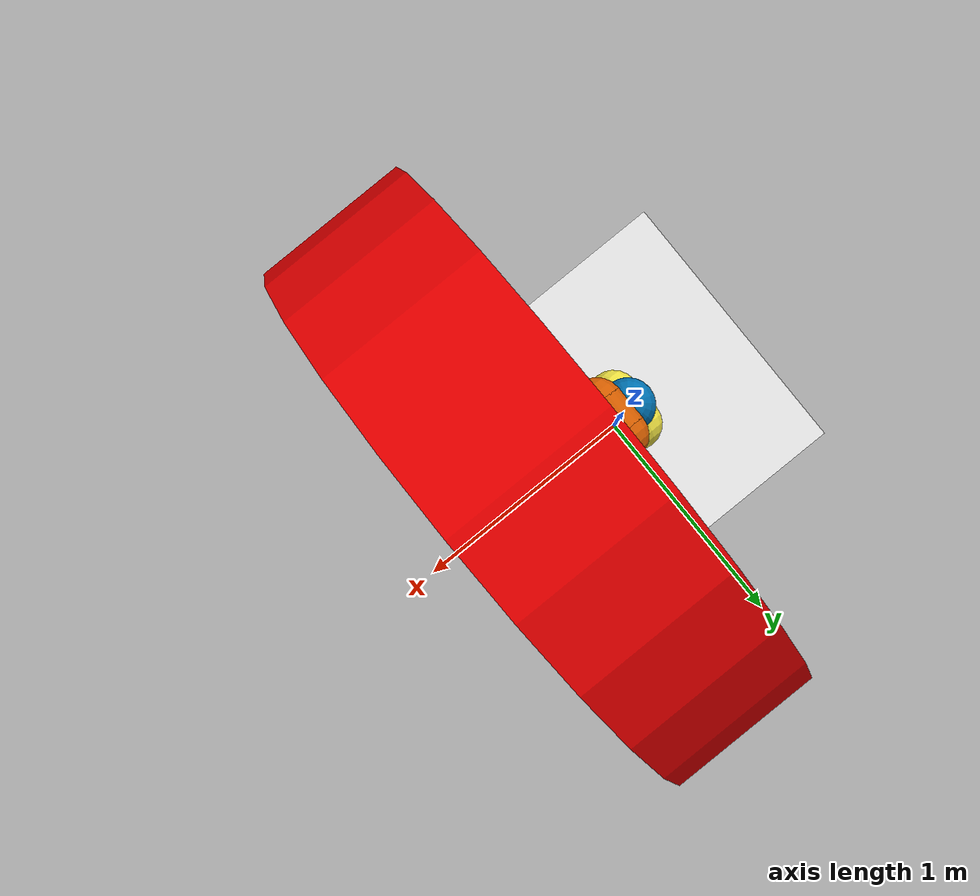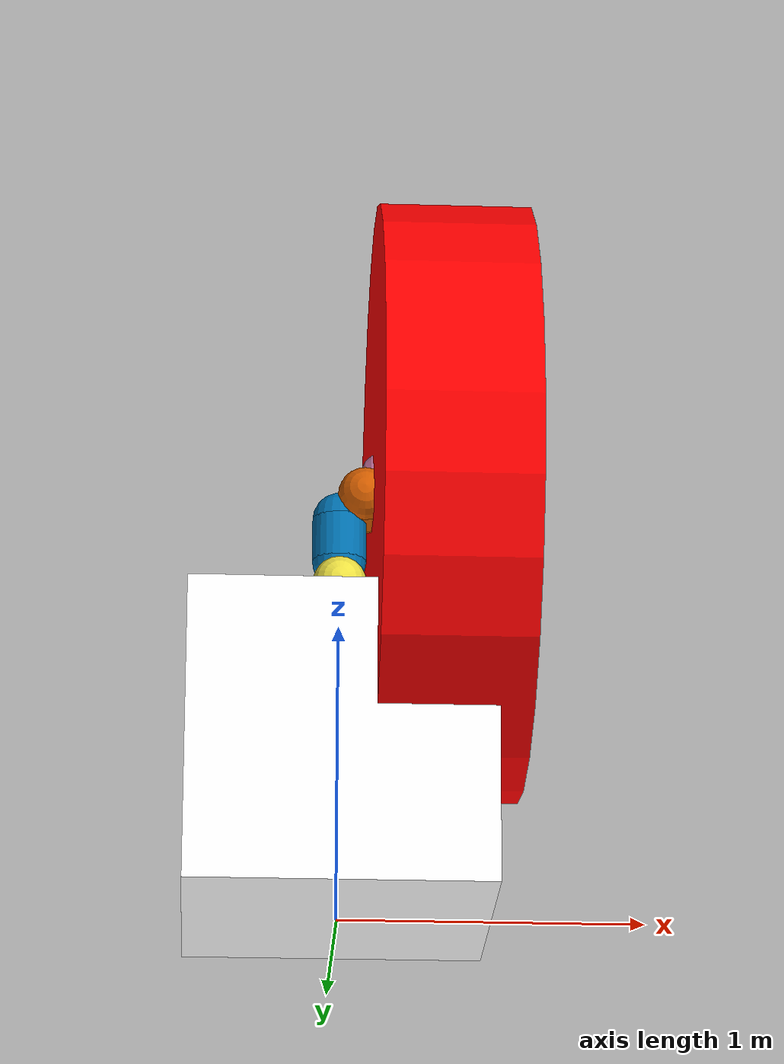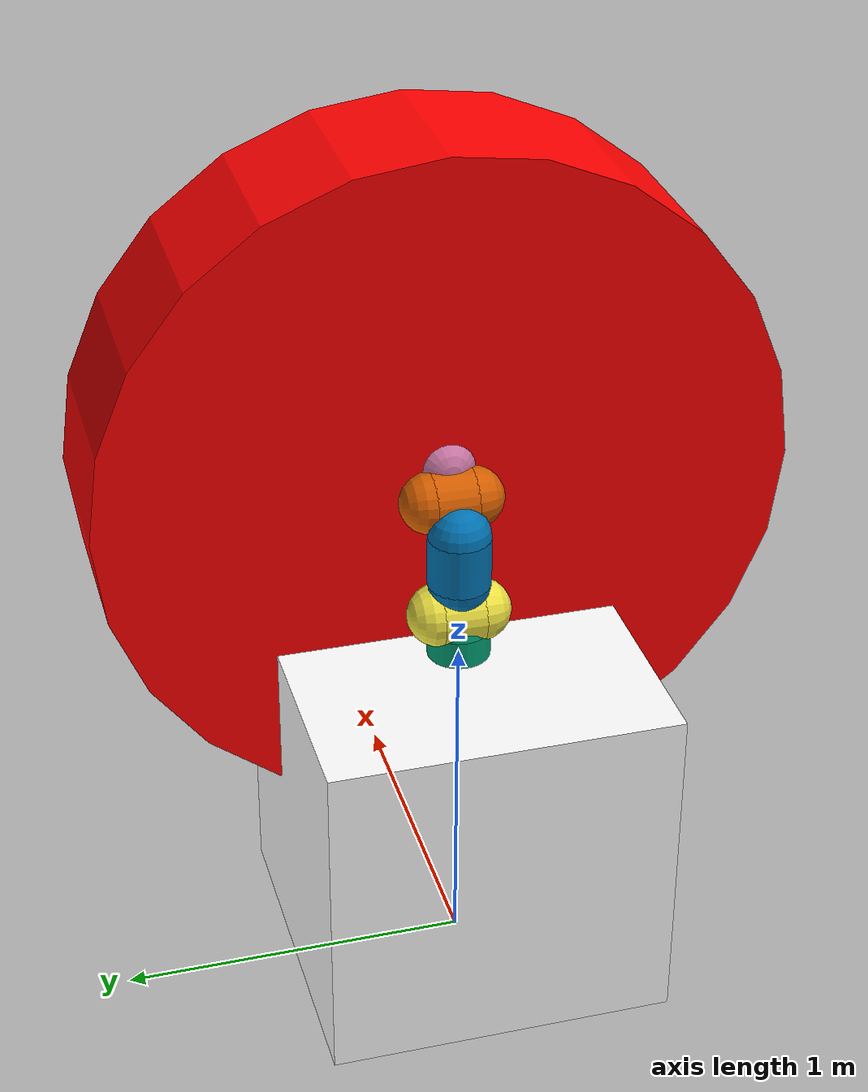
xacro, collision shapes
<?xml version="1.0" encoding="utf-8"?>
<robot xmlns:xacro="http://www.ros.org/wiki/xacro" name="panda">
  <xacro:arg name="arm_id" default="panda" />

  <xacro:include filename="$(find franka_description)/robots/panda_arm.xacro"/>
  <xacro:include filename="$(find franka_description)/robots/hand.xacro"/>

  <!-- box shaped table as base for the Panda -->
  <link name="base">
    <visual>
      <origin xyz="0 0 0.4" rpy="0 0 0"/>
      <geometry>
        <box size="0.8 0.8 0.8" />
      </geometry>
      <material name="White">
        <color rgba="1.0 1.0 1.0 1.0"/>
      </material>
    </visual>
    <collision>
      <origin xyz="0 0 0.5" rpy="0 0 0"/>
      <geometry>
        <box size="1 1 1" />
      </geometry>
    </collision>
  </link>

  <!-- right arm with gripper -->
  <xacro:panda_arm arm_id="$(arg arm_id)" connected_to="base"  xyz="0 0 0.8" safety_distance="0.03"/>

  <xacro:hand ns="$(arg arm_id)" rpy="0 0 ${-pi/4}" connected_to="$(arg arm_id)_link8" safety_distance="0.03"/>

</robot>

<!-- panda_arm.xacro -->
<robot xmlns:xacro="http://www.ros.org/wiki/xacro" name="panda">
  <!-- safety_distance: Minimum safety distance in [m] by which the collision volumes are expanded and which is enforced during robot motions -->
  <!-- arm_id: Namespace of the panda arm. Serves to differentiate between arms in case of multiple instances. -->
  <xacro:macro name="panda_arm" params="arm_id:='panda' description_pkg:='franka_description' connected_to:='' xyz:='0 0 0' rpy:='0 0 0' safety_distance:=0">
    <xacro:unless value="${not connected_to}">
      <joint name="${arm_id}_joint_${connected_to}" type="fixed">
        <parent link="${connected_to}"/>
        <child link="${arm_id}_link0"/>
        <origin rpy="${rpy}" xyz="${xyz}"/>
      </joint>
    </xacro:unless>
    <link name="${arm_id}_link0">
      <visual>
        <geometry>
          <mesh filename="package://${description_pkg}/meshes/visual/link0.dae"/>
        </geometry>
      </visual>
      <collision>
        <origin xyz="-0.075 0 0.06" rpy="0 ${pi/2} 0"/>
        <geometry>
          <cylinder radius="${0.06+safety_distance}" length="0.03" />
        </geometry>
      </collision>
      <collision>
        <origin xyz="-0.06 0 0.06" rpy="0 0 0"/>
        <geometry>
          <sphere radius="${0.06+safety_distance}" />
        </geometry>
      </collision>
      <collision>
        <origin xyz="-0.09 0 0.06" rpy="0 0 0"/>
        <geometry>
          <sphere radius="${0.06+safety_distance}" />
        </geometry>
      </collision>
    </link>
    <link name="${arm_id}_link1">
      <visual>
        <geometry>
          <mesh filename="package://${description_pkg}/meshes/visual/link1.dae"/>
        </geometry>
      </visual>
      <collision>
        <origin xyz="0 0 -0.1915" rpy="0 0 0"/>
        <geometry>
          <cylinder radius="${0.06+safety_distance}" length="0.2830" />
        </geometry>
      </collision>
      <collision>
        <origin xyz="0 0 -0.333" rpy="0 0 0"/>
        <geometry>
          <sphere radius="${0.06+safety_distance}" />
        </geometry>
      </collision>
      <collision>
        <origin xyz="0 0 -0.05" rpy="0 0 0"/>
        <geometry>
          <sphere radius="${0.06+safety_distance}" />
        </geometry>
      </collision>
    </link>
    <joint name="${arm_id}_joint1" type="revolute">
      <safety_controller k_position="100.0" k_velocity="40.0" soft_lower_limit="-2.8973" soft_upper_limit="2.8973"/>
      <origin rpy="0 0 0" xyz="0 0 0.333"/>
      <parent link="${arm_id}_link0"/>
      <child link="${arm_id}_link1"/>
      <axis xyz="0 0 1"/>
      <limit effort="87" lower="-2.8973" upper="2.8973" velocity="2.1750"/>
    </joint>
    <link name="${arm_id}_link2">
      <visual>
        <geometry>
          <mesh filename="package://${description_pkg}/meshes/visual/link2.dae"/>
        </geometry>
      </visual>
      <collision>
        <origin xyz="0 0 0" rpy="0 0 0"/>
        <geometry>
          <cylinder radius="${0.06+safety_distance}" length="0.12" />
        </geometry>
      </collision>
      <collision>
        <origin xyz="0 0 -0.06" rpy="0 0 0"/>
        <geometry>
          <sphere radius="${0.06+safety_distance}" />
        </geometry>
      </collision>
      <collision>
        <origin xyz="0 0 0.06" rpy="0 0 0"/>
        <geometry>
          <sphere radius="${0.06+safety_distance}" />
        </geometry>
      </collision>
    </link>
    <joint name="${arm_id}_joint2" type="revolute">
      <safety_controller k_position="100.0" k_velocity="40.0" soft_lower_limit="-1.7628" soft_upper_limit="1.7628"/>
      <origin rpy="${-pi/2} 0 0" xyz="0 0 0"/>
      <parent link="${arm_id}_link1"/>
      <child link="${arm_id}_link2"/>
      <axis xyz="0 0 1"/>
      <limit effort="87" lower="-1.7628" upper="1.7628" velocity="2.1750"/>
    </joint>
    <link name="${arm_id}_link3">
      <visual>
        <geometry>
          <mesh filename="package://${description_pkg}/meshes/visual/link3.dae"/>
        </geometry>
      </visual>
      <collision>
        <origin xyz="0 0 -0.145" rpy="0 0 0"/>
        <geometry>
          <cylinder radius="${0.06+safety_distance}" length="0.15" />
        </geometry>
      </collision>
      <collision>
        <origin xyz="0 0 -0.22" rpy="0 0 0"/>
        <geometry>
          <sphere radius="${0.06+safety_distance}" />
        </geometry>
      </collision>
      <collision>
        <origin xyz="0 0 -0.07" rpy="0 0 0"/>
        <geometry>
          <sphere radius="${0.06+safety_distance}" />
        </geometry>
      </collision>
    </link>
    <joint name="${arm_id}_joint3" type="revolute">
      <safety_controller k_position="100.0" k_velocity="40.0" soft_lower_limit="-2.8973" soft_upper_limit="2.8973"/>
      <origin rpy="${pi/2} 0 0" xyz="0 -0.316 0"/>
      <parent link="${arm_id}_link2"/>
      <child link="${arm_id}_link3"/>
      <axis xyz="0 0 1"/>
      <limit effort="87" lower="-2.8973" upper="2.8973" velocity="2.1750"/>
    </joint>
    <link name="${arm_id}_link4">
      <visual>
        <geometry>
          <mesh filename="package://${description_pkg}/meshes/visual/link4.dae"/>
        </geometry>
      </visual>
      <collision>
        <origin xyz="0 0 0" rpy="0 0 0"/>
        <geometry>
          <cylinder radius="${0.06+safety_distance}" length="0.12" />
        </geometry>
      </collision>
      <collision>
        <origin xyz="0 0 0.06" rpy="0 0 0"/>
        <geometry>
          <sphere radius="${0.06+safety_distance}" />
        </geometry>
      </collision>
      <collision>
        <origin xyz="0 0 -0.06" rpy="0 0 0"/>
        <geometry>
          <sphere radius="${0.06+safety_distance}" />
        </geometry>
      </collision>
    </link>
    <joint name="${arm_id}_joint4" type="revolute">
      <safety_controller k_position="100.0" k_velocity="40.0" soft_lower_limit="-3.0718" soft_upper_limit="-0.0698"/>
      <origin rpy="${pi/2} 0 0" xyz="0.0825 0 0"/>
      <parent link="${arm_id}_link3"/>
      <child link="${arm_id}_link4"/>
      <axis xyz="0 0 1"/>
      <limit effort="87" lower="-3.0718" upper="-0.0698" velocity="2.1750"/>
    </joint>
    <link name="${arm_id}_link5">
      <visual>
        <geometry>
          <mesh filename="package://${description_pkg}/meshes/visual/link5.dae"/>
        </geometry>
      </visual>
      <collision>
        <origin xyz="0 0 -0.26" rpy="0 0 0"/>
        <geometry>
          <cylinder radius="${0.06+safety_distance}" length="0.1" />
        </geometry>
      </collision>
      <collision>
        <origin xyz="0 0 -0.31" rpy="0 0 0"/>
        <geometry>
          <sphere radius="${0.06+safety_distance}" />
        </geometry>
      </collision>
      <collision>
        <origin xyz="0 0 -0.21" rpy="0 0 0"/>
        <geometry>
          <sphere radius="${0.06+safety_distance}" />
        </geometry>
      </collision>
      <collision>
        <origin xyz="0 0.08 -0.13" rpy="0 0 0"/>
        <geometry>
          <cylinder radius="${0.025+safety_distance}" length="0.14" />
        </geometry>
      </collision>
      <collision>
        <origin xyz="0 0.08 -0.06" rpy="0 0 0"/>
        <geometry>
          <sphere radius="${0.025+safety_distance}" />
        </geometry>
      </collision>
      <collision>
        <origin xyz="0 0.08 -0.20" rpy="0 0 0"/>
        <geometry>
          <sphere radius="${0.025+safety_distance}" />
        </geometry>
      </collision>

    </link>
    <joint name="${arm_id}_joint5" type="revolute">
      <safety_controller k_position="100.0" k_velocity="40.0" soft_lower_limit="-2.8973" soft_upper_limit="2.8973"/>
      <origin rpy="${-pi/2} 0 0" xyz="-0.0825 0.384 0"/>
      <parent link="${arm_id}_link4"/>
      <child link="${arm_id}_link5"/>
      <axis xyz="0 0 1"/>
      <limit effort="12" lower="-2.8973" upper="2.8973" velocity="2.6100"/>
    </joint>
    <link name="${arm_id}_link6">
      <visual>
        <geometry>
          <mesh filename="package://${description_pkg}/meshes/visual/link6.dae"/>
        </geometry>
      </visual>
      <collision>
        <origin xyz="0 0 -0.03" rpy="0 0 0"/>
        <geometry>
          <cylinder radius="${0.05+safety_distance}" length="0.08" />
        </geometry>
      </collision>
      <collision>
        <origin xyz="0 0 0.01" rpy="0 0 0"/>
        <geometry>
          <sphere radius="${0.05+safety_distance}" />
        </geometry>
      </collision>
      <collision>
        <origin xyz="0 0 -0.07" rpy="0 0 0"/>
        <geometry>
          <sphere radius="${0.05+safety_distance}" />
        </geometry>
      </collision>
    </link>
    <joint name="${arm_id}_joint6" type="revolute">
      <safety_controller k_position="100.0" k_velocity="40.0" soft_lower_limit="-0.0175" soft_upper_limit="3.7525"/>
      <origin rpy="${pi/2} 0 0" xyz="0 0 0"/>
      <parent link="${arm_id}_link5"/>
      <child link="${arm_id}_link6"/>
      <axis xyz="0 0 1"/>
      <limit effort="12" lower="-0.0175" upper="3.7525" velocity="2.6100"/>
    </joint>
    <link name="${arm_id}_link7">
      <visual>
        <geometry>
          <mesh filename="package://${description_pkg}/meshes/visual/link7.dae"/>
        </geometry>
      </visual>
      <collision>
        <origin xyz="0 0 0.01" rpy="0 0 0"/>
        <geometry>
          <cylinder radius="${0.04+safety_distance}" length="0.14" />
        </geometry>
      </collision>
      <collision>
        <origin xyz="0 0 0.08" rpy="0 0 0"/>
        <geometry>
          <sphere radius="${0.04+safety_distance}"  />
        </geometry>
      </collision>
      <collision>
        <origin xyz="0 0 -0.06" rpy="0 0 0"/>
        <geometry>
          <sphere radius="${0.04+safety_distance}"  />
        </geometry>
      </collision>
    </link>
    <joint name="${arm_id}_joint7" type="revolute">
      <safety_controller k_position="100.0" k_velocity="40.0" soft_lower_limit="-2.8973" soft_upper_limit="2.8973"/>
      <origin rpy="${pi/2} 0 0" xyz="0.088 0 0"/>
      <parent link="${arm_id}_link6"/>
      <child link="${arm_id}_link7"/>
      <axis xyz="0 0 1"/>
      <limit effort="12" lower="-2.8973" upper="2.8973" velocity="2.6100"/>
    </joint>
    <link name="${arm_id}_link8">
      <collision>
        <origin xyz="0.0424 0.0424 -0.0250" rpy="${pi} ${pi/2} ${pi/2}"/>
        <geometry>
          <cylinder radius="${0.03+safety_distance}"  length="0.01" />
        </geometry>
      </collision>
      <collision>
        <origin xyz="0.0424 0.0424 -0.02" rpy="0 0 0"/>
        <geometry>
          <sphere radius="${0.03+safety_distance}"  />
        </geometry>
      </collision>
      <collision>
        <origin xyz="0.0424 0.0424 -0.03" rpy="0 0 0"/>
        <geometry>
          <sphere radius="${0.03+safety_distance}"  />
        </geometry>
      </collision>
    </link>
    <joint name="${arm_id}_joint8" type="fixed">
      <origin rpy="0 0 0" xyz="0 0 0.107"/>
      <parent link="${arm_id}_link7"/>
      <child link="${arm_id}_link8"/>
    </joint>
  </xacro:macro>
</robot>

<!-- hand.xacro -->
<robot xmlns:xacro="http://www.ros.org/wiki/xacro" name="hand">
  <!-- safety_distance: Minimum safety distance in [m] by which the collision volumes are expanded and which is enforced during robot motions -->
  <xacro:macro name="hand" params="connected_to:='' ns:='' rpy:='0 0 0' xyz:='0 0 0' safety_distance:=0">
    <xacro:unless value="${connected_to == ''}">
      <joint name="${ns}_hand_joint" type="fixed">
        <parent link="${connected_to}"/>
        <child link="${ns}_hand"/>
        <origin xyz="${xyz}" rpy="${rpy}"/>
      </joint>
    </xacro:unless>
    <link name="${ns}_hand">

    <visual>
      <origin xyz="0 0 0.05" rpy="0 0 0"/>
      <geometry>
        <cylinder radius="0.04" length="0.1"/>
      </geometry>
      <material name="Red">
        <color rgba="1.0 0 0 1.0"/>
      </material>
    </visual>
    <collision>
      <origin xyz="0 0 0" rpy="0 0 0"/>
      <geometry>
        <cylinder radius="1" length="0.5"/>
      </geometry>
    </collision>

    </link>

  </xacro:macro>
</robot>
